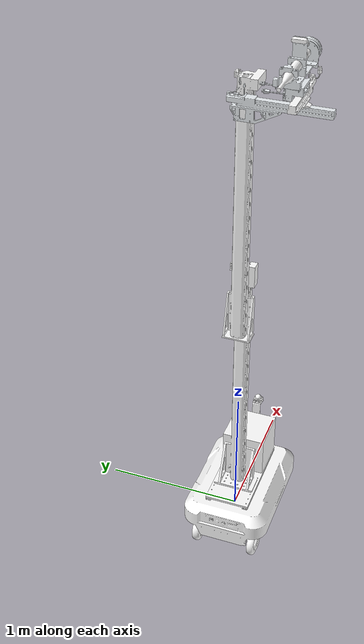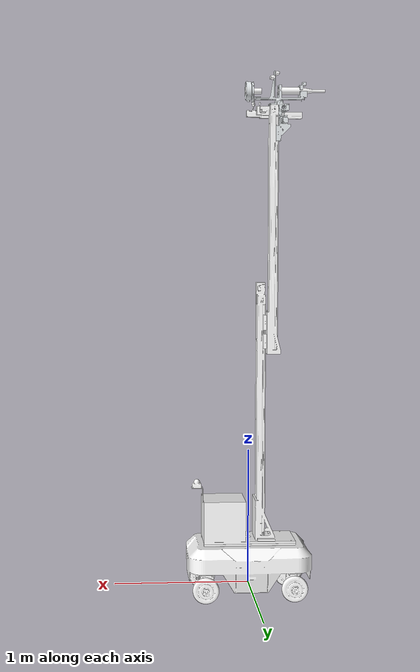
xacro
<?xml version="1.0"?>
<robot xmlns:xacro="http://www.ros.org/wiki/xacro" name="bdrobot_description">
    <xacro:arg name="initial_positions_file" default="initial_positions.yaml" />

    <!-- Import bdrobot_description urdf file -->
    <xacro:include filename="$(find bdrobot_description)/urdf/robot_description.urdf" />

    <!-- Import control_xacro -->
    <xacro:include filename="bdrobot_description.ros2_control.xacro" />

    <xacro:bdrobot_description_ros2_control name="FakeSystem" initial_positions_file="$(arg initial_positions_file)"/>

</robot>

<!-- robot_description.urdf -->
<robot
  name="bdrobot_description">
  <link
    name="base_link">
    <inertial>
      <origin
        xyz="-0.0057476 -0.039381 0.11133"
        rpy="0 0 0" />
      <mass
        value="77.125" />
      <inertia
        ixx="1.2277"
        ixy="-1.443E-05"
        ixz="0.00093912"
        iyy="1.46175"
        iyz="0.00072698"
        izz="2.5319" />
    </inertial>
    <visual>
      <origin
        xyz="0 0 0"
        rpy="0 0 0" />
      <geometry>
        <mesh
          filename="package://bdrobot_description/meshes/base_link.STL" />
      </geometry>
      <material
        name="">
        <color
          rgba="1 1 1 1" />
      </material>
    </visual>
    <collision>
      <origin
        xyz="0 0 0"
        rpy="0 0 0" />
      <geometry>
        <mesh
          filename="package://bdrobot_description/meshes/base_link.STL" />
      </geometry>
    </collision>
  </link>
  <link
    name="lf_wheel_link">
    <inertial>
      <origin
        xyz="2.0055E-08 -0.039382 -5.463E-06"
        rpy="0 0 0" />
      <mass
        value="1.1009" />
      <inertia
        ixx="0.0032477"
        ixy="7.747E-12"
        ixz="-4.8792E-09"
        iyy="0.0061426"
        iyz="-4.7801E-08"
        izz="0.0032478" />
    </inertial>
    <visual>
      <origin
        xyz="0 0 0"
        rpy="0 0 0" />
      <geometry>
        <mesh
          filename="package://bdrobot_description/meshes/lf_wheel_link.STL" />
      </geometry>
      <material
        name="">
        <color
          rgba="1 1 1 1" />
      </material>
    </visual>
    <collision>
      <origin
        xyz="0 0 0"
        rpy="0 0 0" />
      <geometry>
        <mesh
          filename="package://bdrobot_description/meshes/lf_wheel_link.STL" />
      </geometry>
    </collision>
  </link>
  <joint
    name="lf_wheel_joint"
    type="continuous">
    <origin
      xyz="0.33 0.212500156272493 -0.0160000000000001"
      rpy="0 0 0" />
    <parent
      link="base_link" />
    <child
      link="lf_wheel_link" />
    <axis
      xyz="0 1 0" />
  </joint>
  <link
    name="rf_wheel_link">
    <inertial>
      <origin
        xyz="5.29620937661512E-08 0.0393821808561944 -5.47873021344847E-06"
        rpy="0 0 0" />
      <mass
        value="1.1009175459377" />
      <inertia
        ixx="0.0032477285286827"
        ixy="2.09337415565818E-10"
        ixz="1.80772458655407E-09"
        iyy="0.00614266777390348"
        iyz="4.7673237071187E-08"
        izz="0.00324782091696794" />
    </inertial>
    <visual>
      <origin
        xyz="0 0 0"
        rpy="0 0 0" />
      <geometry>
        <mesh
          filename="package://bdrobot_description/meshes/rf_wheel_link.STL" />
      </geometry>
      <material
        name="">
        <color
          rgba="1 1 1 1" />
      </material>
    </visual>
    <collision>
      <origin
        xyz="0 0 0"
        rpy="0 0 0" />
      <geometry>
        <mesh
          filename="package://bdrobot_description/meshes/rf_wheel_link.STL" />
      </geometry>
    </collision>
  </link>
  <joint
    name="rf_wheel_joint"
    type="continuous">
    <origin
      xyz="0.33 -0.289599843727507 -0.0160000000000001"
      rpy="0 0 0" />
    <parent
      link="base_link" />
    <child
      link="rf_wheel_link" />
    <axis
      xyz="0 1 0" />
  </joint>
  <link
    name="lr_wheel_link">
    <inertial>
      <origin
        xyz="-5.29804374260756E-08 -0.0393821808893136 -5.47871668049593E-06"
        rpy="0 0 0" />
      <mass
        value="1.10091754456913" />
      <inertia
        ixx="0.0032477285285122"
        ixy="2.0932461023064E-10"
        ixz="-1.80794897802739E-09"
        iyy="0.00614266777316681"
        iyz="-4.76732291800624E-08"
        izz="0.00324782091640295" />
    </inertial>
    <visual>
      <origin
        xyz="0 0 0"
        rpy="0 0 0" />
      <geometry>
        <mesh
          filename="package://bdrobot_description/meshes/lr_wheel_link.STL" />
      </geometry>
      <material
        name="">
        <color
          rgba="1 1 1 1" />
      </material>
    </visual>
    <collision>
      <origin
        xyz="0 0 0"
        rpy="0 0 0" />
      <geometry>
        <mesh
          filename="package://bdrobot_description/meshes/lr_wheel_link.STL" />
      </geometry>
    </collision>
  </link>
  <joint
    name="lr_wheel_joint"
    type="continuous">
    <origin
      xyz="-0.33 0.212500156272493 -0.0160000000000011"
      rpy="0 0 0" />
    <parent
      link="base_link" />
    <child
      link="lr_wheel_link" />
    <axis
      xyz="0 1 0" />
  </joint>
  <link
    name="rr_wheel_link">
    <inertial>
      <origin
        xyz="-1.99943679946024E-08 0.0393821585062223 -5.46301029408225E-06"
        rpy="0 0 0" />
      <mass
        value="1.10092453588354" />
      <inertia
        ixx="0.00324772513243801"
        ixy="7.70626398651909E-12"
        ixz="4.87995273186742E-09"
        iyy="0.00614264806273597"
        iyz="4.78006195858918E-08"
        izz="0.00324780594587939" />
    </inertial>
    <visual>
      <origin
        xyz="0 0 0"
        rpy="0 0 0" />
      <geometry>
        <mesh
          filename="package://bdrobot_description/meshes/rr_wheel_link.STL" />
      </geometry>
      <material
        name="">
        <color
          rgba="1 1 1 1" />
      </material>
    </visual>
    <collision>
      <origin
        xyz="0 0 0"
        rpy="0 0 0" />
      <geometry>
        <mesh
          filename="package://bdrobot_description/meshes/rr_wheel_link.STL" />
      </geometry>
    </collision>
  </link>
  <joint
    name="rr_wheel_joint"
    type="continuous">
    <origin
      xyz="-0.33 -0.289599843727507 -0.0160000000000001"
      rpy="0 0 0" />
    <parent
      link="base_link" />
    <child
      link="rr_wheel_link" />
    <axis
      xyz="0 1 0" />
  </joint>
  <link
    name="arm_base_link">
    <inertial>
      <origin
        xyz="-0.065411 0.000157 0.36344"
        rpy="0 0 0" />
      <mass
        value="26.715" />
      <inertia
        ixx="2.4605"
        ixy="2.7571E-07"
        ixz="0.0011556"
        iyy="2.6951"
        iyz="-1.5377E-05"
        izz="0.47827" />
    </inertial>
    <visual>
      <origin
        xyz="0 0 0"
        rpy="0 0 0" />
      <geometry>
        <mesh
          filename="package://bdrobot_description/meshes/arm_base_link.STL" />
      </geometry>
      <material
        name="">
        <color
          rgba="1 1 1 1" />
      </material>
    </visual>
    <collision>
      <origin
        xyz="0 0 0"
        rpy="0 0 0" />
      <geometry>
        <mesh
          filename="package://bdrobot_description/meshes/arm_base_link.STL" />
      </geometry>
    </collision>
  </link>
  <joint
    name="arm_base_joint"
    type="fixed">
    <origin
      xyz="-0.09252 -0.03855 0.3482"
      rpy="0 0 3.1416" />
    <parent
      link="base_link" />
    <child
      link="arm_base_link" />
    <axis
      xyz="0 0 0" />
  </joint>
  <link
    name="lidar_link">
    <inertial>
      <origin
        xyz="-0.000247054269689457 5.18231249267975E-05 -0.0249880180291789"
        rpy="0 0 0" />
      <mass
        value="0.141548371901221" />
      <inertia
        ixx="4.17319545590906E-05"
        ixy="2.74393576609784E-10"
        ixz="3.91689095946493E-07"
        iyy="4.48884292602418E-05"
        iyz="4.00404529873333E-09"
        izz="6.86597202439764E-05" />
    </inertial>
    <visual>
      <origin
        xyz="0 0 0"
        rpy="0 0 0" />
      <geometry>
        <mesh
          filename="package://bdrobot_description/meshes/lidar_link.STL" />
      </geometry>
      <material
        name="">
        <color
          rgba="1 1 1 1" />
      </material>
    </visual>
    <collision>
      <origin
        xyz="0 0 0"
        rpy="0 0 0" />
      <geometry>
        <mesh
          filename="package://bdrobot_description/meshes/lidar_link.STL" />
      </geometry>
    </collision>
  </link>
  <joint
    name="lidar_joint"
    type="fixed">
    <origin
      xyz="-0.475948365528432 0 0.414999999999999"
      rpy="0 0 -1.5707963267949" />
    <parent
      link="arm_base_link" />
    <child
      link="lidar_link" />
    <axis
      xyz="0 0 0" />
  </joint>
  <link
    name="arm1_link">
    <inertial>
      <origin
        xyz="-0.019289 0.00028774 0.67545"
        rpy="0 0 0" />
      <mass
        value="14.173" />
      <inertia
        ixx="2.3406"
        ixy="-6.2364E-07"
        ixz="0.00024335"
        iyy="2.3241"
        iyz="-1.6296E-05"
        izz="0.020904" />
    </inertial>
    <visual>
      <origin
        xyz="0 0 0"
        rpy="0 0 0" />
      <geometry>
        <mesh
          filename="package://bdrobot_description/meshes/arm1_link.STL" />
      </geometry>
      <material
        name="">
        <color
          rgba="1 1 1 1" />
      </material>
    </visual>
    <collision>
      <origin
        xyz="0 0 0"
        rpy="0 0 0" />
      <geometry>
        <mesh
          filename="package://bdrobot_description/meshes/arm1_link.STL" />
      </geometry>
    </collision>
  </link>
  <joint
    name="arm1_joint"
    type="prismatic">
    <origin
      xyz="0.09 0 1.3847"
      rpy="0 0 0" />
    <parent
      link="arm_base_link" />
    <child
      link="arm1_link" />
    <axis
      xyz="0 0 1" />
    <limit
      lower="-1.35"
      upper="0"
      effort="800"
      velocity="1" />
  </joint>
  <link
    name="arm2_link">
    <inertial>
      <origin
        xyz="-0.0047171 -0.015529 0.12162"
        rpy="0 0 0" />
      <mass
        value="3.9798" />
      <inertia
        ixx="0.047622"
        ixy="-1.8447E-05"
        ixz="-1.7615E-05"
        iyy="0.047204"
        iyz="0.00036514"
        izz="0.0022044" />
    </inertial>
    <visual>
      <origin
        xyz="0 0 0"
        rpy="0 0 0" />
      <geometry>
        <mesh
          filename="package://bdrobot_description/meshes/arm2_link.STL" />
      </geometry>
      <material
        name="">
        <color
          rgba="0.89804 0.91765 0.92941 1" />
      </material>
    </visual>
    <collision>
      <origin
        xyz="0 0 0"
        rpy="0 0 0" />
      <geometry>
        <mesh
          filename="package://bdrobot_description/meshes/arm2_link.STL" />
      </geometry>
    </collision>
  </link>
  <joint
    name="arm2_joint"
    type="prismatic">
    <origin
      xyz="0.075682 0.094866 1.6597"
      rpy="-1.5708 0 0" />
    <parent
      link="arm1_link" />
    <child
      link="arm2_link" />
    <axis
      xyz="0 -1 0" />
    <limit
      lower="-1.4"
      upper="0"
      effort="600"
      velocity="1" />
  </joint>
  <link
    name="arm3_link">
    <inertial>
      <origin
        xyz="0.0313438369595258 -0.000172218744697611 0.0138860381970993"
        rpy="0 0 0" />
      <mass
        value="1.82077344673195" />
      <inertia
        ixx="0.00726489668633472"
        ixy="4.20624998251187E-05"
        ixz="-6.04118269055179E-06"
        iyy="0.00726091062725561"
        iyz="3.04473952030562E-06"
        izz="0.000797310438903443" />
    </inertial>
    <visual>
      <origin
        xyz="0 0 0"
        rpy="0 0 0" />
      <geometry>
        <mesh
          filename="package://bdrobot_description/meshes/arm3_link.STL" />
      </geometry>
      <material
        name="">
        <color
          rgba="1 1 1 1" />
      </material>
    </visual>
    <collision>
      <origin
        xyz="0 0 0"
        rpy="0 0 0" />
      <geometry>
        <mesh
          filename="package://bdrobot_description/meshes/arm3_link.STL" />
      </geometry>
    </collision>
  </link>
  <joint
    name="arm3_joint"
    type="prismatic">
    <origin
      xyz="0.0017592 -0.07 0.06464"
      rpy="-1.5708 0 -1.5708" />
    <parent
      link="arm2_link" />
    <child
      link="arm3_link" />
    <axis
      xyz="0 -1 0" />
    <limit
      lower="0.01"
      upper="0.36"
      effort="400"
      velocity="1" />
  </joint>
  <link
    name="arm4_link">
    <inertial>
      <origin
        xyz="0.008039382003073 -0.0018029400078996 0.0271024239151401"
        rpy="0 0 0" />
      <mass
        value="1.24039808190625" />
      <inertia
        ixx="0.00230245084591217"
        ixy="-1.87899149424791E-06"
        ixz="-1.06623851159966E-05"
        iyy="0.000802269966761739"
        iyz="-1.26749455016738E-05"
        izz="0.0029717341534119" />
    </inertial>
    <visual>
      <origin
        xyz="0 0 0"
        rpy="0 0 0" />
      <geometry>
        <mesh
          filename="package://bdrobot_description/meshes/arm4_link.STL" />
      </geometry>
      <material
        name="">
        <color
          rgba="0.898039215686275 0.917647058823529 0.929411764705882 1" />
      </material>
    </visual>
    <collision>
      <origin
        xyz="0 0 0"
        rpy="0 0 0" />
      <geometry>
        <mesh
          filename="package://bdrobot_description/meshes/arm4_link.STL" />
      </geometry>
    </collision>
  </link>
  <joint
    name="arm4_joint"
    type="prismatic">
    <origin
      xyz="0.07 0.013102 0.0036618"
      rpy="1.5708 0 1.5708" />
    <parent
      link="arm3_link" />
    <child
      link="arm4_link" />
    <axis
      xyz="0 1 0" />
    <limit
      lower="0"
      upper="0.2"
      effort="200"
      velocity="1" />
  </joint>
  <link
    name="arm5_link">
    <inertial>
      <origin
        xyz="-0.00237192649642326 -9.652144863731E-06 0.0363750371305445"
        rpy="0 0 0" />
      <mass
        value="2.0482316422202" />
      <inertia
        ixx="0.0033302204217937"
        ixy="-2.83111904508034E-07"
        ixz="-4.87665728682621E-05"
        iyy="0.00917292833135536"
        iyz="1.72219584285786E-07"
        izz="0.00990543411370346" />
    </inertial>
    <visual>
      <origin
        xyz="0 0 0"
        rpy="0 0 0" />
      <geometry>
        <mesh
          filename="package://bdrobot_description/meshes/arm5_link.STL" />
      </geometry>
      <material
        name="">
        <color
          rgba="0.898039215686275 0.917647058823529 0.929411764705882 1" />
      </material>
    </visual>
    <collision>
      <origin
        xyz="0 0 0"
        rpy="0 0 0" />
      <geometry>
        <mesh
          filename="package://bdrobot_description/meshes/arm5_link.STL" />
      </geometry>
    </collision>
  </link>
  <joint
    name="arm5_joint"
    type="revolute">
    <origin
      xyz="0.019804 -0.006984 0.08"
      rpy="0 0 1.5708" />
    <parent
      link="arm4_link" />
    <child
      link="arm5_link" />
    <axis
      xyz="0 0 1" />
    <limit
      lower="-3.1416"
      upper="3.1416"
      effort="50"
      velocity="1" />
  </joint>
  <link
    name="camera_link">
    <inertial>
      <origin
        xyz="0.0247260864954423 -0.000283173607896536 -0.0115609707848"
        rpy="0 0 0" />
      <mass
        value="0.0182734061965469" />
      <inertia
        ixx="1.69289076092524E-06"
        ixy="-1.08942959560122E-08"
        ixz="4.8119055496781E-09"
        iyy="1.31462303757811E-05"
        iyz="-1.98241320080072E-08"
        izz="1.38475102497494E-05" />
    </inertial>
    <visual>
      <origin
        xyz="0 0 0"
        rpy="0 0 0" />
      <geometry>
        <mesh
          filename="package://bdrobot_description/meshes/camera_link.STL" />
      </geometry>
      <material
        name="">
        <color
          rgba="1 1 1 1" />
      </material>
    </visual>
    <collision>
      <origin
        xyz="0 0 0"
        rpy="0 0 0" />
      <geometry>
        <mesh
          filename="package://bdrobot_description/meshes/camera_link.STL" />
      </geometry>
    </collision>
  </link>
  <joint
    name="camera_joint"
    type="fixed">
    <origin
      xyz="-0.0024686326802941 0.025 0.195"
      rpy="-1.5707963267949 0 -1.5707963267949" />
    <parent
      link="arm5_link" />
    <child
      link="camera_link" />
    <axis
      xyz="0 0 0" />
  </joint>
  <link
    name="camera_sub_link">
    <inertial>
      <origin
        xyz="0.0247260869164004 -0.000283173488454302 -0.011560971003687"
        rpy="0 0 0" />
      <mass
        value="0.0182734065619961" />
      <inertia
        ixx="1.69289079712271E-06"
        ixy="-1.08943418761773E-08"
        ixz="4.81191023206214E-09"
        iyy="1.31462306009845E-05"
        iyz="-1.98241335436095E-08"
        izz="1.38475105099951E-05" />
    </inertial>
    <visual>
      <origin
        xyz="0 0 0"
        rpy="0 0 0" />
      <geometry>
        <mesh
          filename="package://bdrobot_description/meshes/camera_sub_link.STL" />
      </geometry>
      <material
        name="">
        <color
          rgba="1 1 1 1" />
      </material>
    </visual>
    <collision>
      <origin
        xyz="0 0 0"
        rpy="0 0 0" />
      <geometry>
        <mesh
          filename="package://bdrobot_description/meshes/camera_sub_link.STL" />
      </geometry>
    </collision>
  </link>
  <joint
    name="camera_sub_joint"
    type="fixed">
    <origin
      xyz="-0.0565086326802941 -0.025 0.165"
      rpy="-1.5707963267949 0 1.5707963267949" />
    <parent
      link="arm5_link" />
    <child
      link="camera_sub_link" />
    <axis
      xyz="0 0 0" />
  </joint>
  <link
    name="bounder_link">
    <inertial>
      <origin
        xyz="-0.13871 1.6653E-16 4.4409E-16"
        rpy="0 0 0" />
      <mass
        value="1" />
      <inertia
        ixx="0.00035"
        ixy="3.6428E-18"
        ixz="4.1111E-20"
        iyy="0.0072"
        iyz="-9.7645E-23"
        izz="0.0072" />
    </inertial>
    <visual>
      <origin
        xyz="0 0 0"
        rpy="0 0 0" />
      <geometry>
        <mesh
          filename="package://bdrobot_description/meshes/bounder_link.STL" />
      </geometry>
      <material
        name="">
        <color
          rgba="1 1 1 1" />
      </material>
    </visual>
    <collision>
      <origin
        xyz="0 0 0"
        rpy="0 0 0" />
      <geometry>
        <mesh
          filename="package://bdrobot_description/meshes/bounder_link.STL" />
      </geometry>
    </collision>
  </link>
  <joint
    name="bounder_joint"
    type="fixed">
    <origin
      xyz="0.264011367319705 0 0.0649999999999999"
      rpy="0 0 0" />
    <parent
      link="arm5_link" />
    <child
      link="bounder_link" />
    <axis
      xyz="0 0 0" />
  </joint>
  <link
    name="grinder_link">
    <inertial>
      <origin
        xyz="-0.0558397928285188 0 0"
        rpy="0 0 0" />
      <mass
        value="0.183565476941937" />
      <inertia
        ixx="6.30934100857164E-05"
        ixy="1.9055795087197E-23"
        ixz="1.17171399957516E-21"
        iyy="6.98779337983769E-05"
        iyz="-7.63970765939478E-22"
        izz="6.98404202817025E-05" />
    </inertial>
    <visual>
      <origin
        xyz="0 0 0"
        rpy="0 0 0" />
      <geometry>
        <mesh
          filename="package://bdrobot_description/meshes/grinder_link.STL" />
      </geometry>
      <material
        name="">
        <color
          rgba="1 1 1 1" />
      </material>
    </visual>
    <collision>
      <origin
        xyz="0 0 0"
        rpy="0 0 0" />
      <geometry>
        <mesh
          filename="package://bdrobot_description/meshes/grinder_link.STL" />
      </geometry>
    </collision>
  </link>
  <joint
    name="grinder_joint"
    type="fixed">
    <origin
      xyz="-0.25099 0 0.063"
      rpy="0 0 3.1416" />
    <parent
      link="arm5_link" />
    <child
      link="grinder_link" />
    <axis
      xyz="0 0 0" />
  </joint>

  <gazebo reference="lidar_link">
    <sensor name="lidar" type="ray">
      <pose>0 0 0 0 0 0</pose>
      <visualize>true</visualize>
      <update_rate>10</update_rate>
      <!-- This ray plgin is only for visualization. -->
      <plugin filename="libros2_livox.so" name="lidar_link_plugin">
        <ray>
          <scan>
            <horizontal>
              <samples>100</samples>
              <resolution>1</resolution>
              <min_angle>0</min_angle>
              <max_angle>6.2831852</max_angle>
            </horizontal>
            <vertical>
              <samples>360</samples>
              <resolution>1</resolution>
              <min_angle>-0.12601276984444446</min_angle>
              <max_angle>0.9637707965111111</max_angle>
            </vertical>
          </scan>
          <range>
            <min>0.1</min>
            <max>200.0</max>
            <resolution>0.002</resolution>
          </range>
          <noise>
            <type>gaussian</type>
            <mean>0.0</mean>
            <stddev>0.01</stddev>
          </noise>
        </ray>
        <visualize>false</visualize>
        <samples>40000</samples>
        <downsample>1</downsample>
        <csv_file_name>/home/yuyouling/bdrobot_ws/install/ros2_livox_simulation/share/ros2_livox_simulation/scan_mode/mid360.csv</csv_file_name>
        <topic>mid360</topic>
      </plugin>
    </sensor>
  </gazebo>

  <joint
    name="imu_joint"
    type="fixed">
    <origin
      xyz="0.011 0.02329 -0.04412"
      rpy="0 0 0" />
    <parent
      link="lidar_link" />
    <child
      link="imu_link" />
    <axis
      xyz="0 0 0" />
  </joint>
  <link name="imu_link" />

  <gazebo reference="imu_link">
    <sensor name="imu" type="imu">
      <always_on>true</always_on>
      <update_rate>200</update_rate>
      <plugin filename="libgazebo_ros_imu_sensor.so" name="gazebo_ros_imu_sensor">
        <ros>
          <namespace>/</namespace>
          <remapping>~/out:=imu</remapping>
        </ros>
        <frame_name>imu_link</frame_name>
        <initial_orientation_as_reference>false</initial_orientation_as_reference>
      </plugin>
    </sensor>
  </gazebo>

  <gazebo reference="camera_link">
    <sensor name="camera" type="depth">
      <visualize>true</visualize>
      <always_on>true</always_on>
      <update_rate>30</update_rate>
      <camera>
        <horizontal_fov>1.504</horizontal_fov>
        <image>
          <width>1920</width>
          <height>1080</height>
          <format>R8G8B8</format>
        </image>
        <clip>
          <near>0.02</near>
          <far>30.0</far>
        </clip>
        <noise>
          <type>gaussian</type>
          <mean>0.0</mean>
          <stddev>0.007</stddev>
        </noise>
      </camera>
      <plugin filename="libgazebo_ros_camera.so" name="gazebo_ros_camera">
        <ros>
          <namespace>/</namespace>
        </ros>
        <frame_name>camera_link</frame_name>
      </plugin>
    </sensor>
  </gazebo>

  <gazebo>
    <plugin name="planar_move" filename="libgazebo_ros_planar_move.so">
      <ros>
        <namespace>/</namespace>
        <argument>cmd_vel:=cmd_vel</argument>
        <argument>odom:=odom</argument>
      </ros>

      <update_rate>100</update_rate>
      <publish_rate>30</publish_rate>

      <!-- output -->
      <publish_odom>false</publish_odom>
      <publish_odom_tf>false</publish_odom_tf>

      <odometry_frame>odom</odometry_frame>
      <robot_base_frame>base_link</robot_base_frame>

      <covariance_x>0.0001</covariance_x>
      <covariance_y>0.0001</covariance_y>
      <covariance_yaw>0.01</covariance_yaw>
    </plugin>
  </gazebo>
  <gazebo>
    <plugin filename="libgazebo_ros_joint_state_publisher.so" name="gazebo_joint_state">
      <ros>
        <namespace>/</namespace>
        <remapping>~/out:=joint_states</remapping>
      </ros>
      <update_rate>50</update_rate>
      <joint_name>lf_wheel_joint</joint_name>
      <joint_name>lr_wheel_joint</joint_name>
      <joint_name>rf_wheel_joint</joint_name>
      <joint_name>rr_wheel_joint</joint_name>
      <joint_name>arm1_joint</joint_name>
      <joint_name>arm2_joint</joint_name>
      <joint_name>arm3_joint</joint_name>
      <joint_name>arm4_joint</joint_name>
      <joint_name>arm5_joint</joint_name>
    </plugin>
  </gazebo>
</robot>
